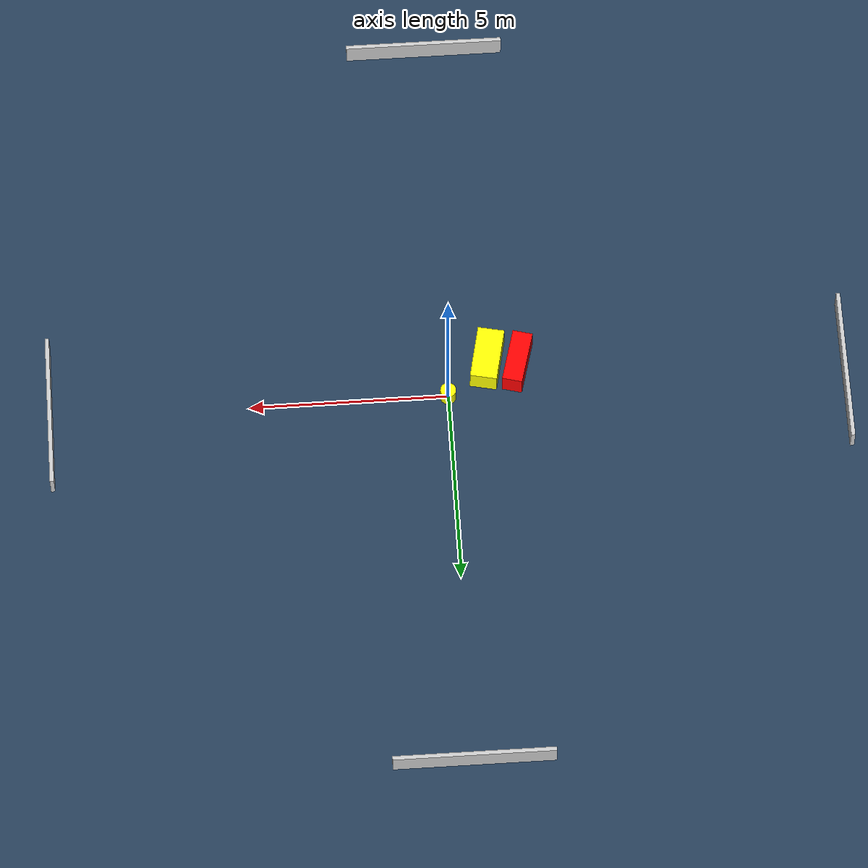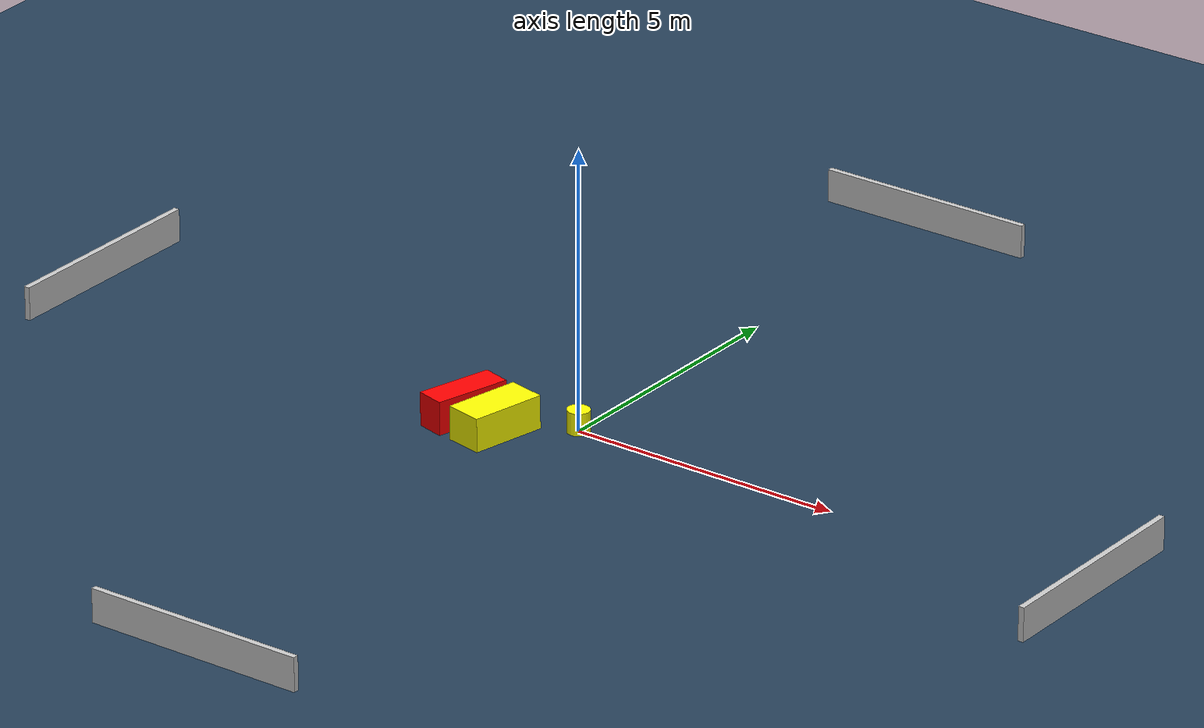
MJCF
<?xml version="1.0" ?>
<mujoco model="generated_environment">
  <option timestep="0.01" integrator="RK4" cone="elliptic"/>
  <default>
    <geom density="1"/>
  </default>
  <asset>
    <texture builtin="gradient" height="3072" name="skybox" rgb1="0.3 0.5 0.7" rgb2="0 0 0" type="skybox" width="512"/>
    <texture builtin="checker" height="300" name="groundplane" rgb1="0.2 0.3 0.4" rgb2="0.1 0.2 0.3" type="2d" width="300"/>
    <material name="groundplane" reflectance="0.2" texrepeat="5 5" texture="groundplane"/>
  </asset>
  <worldbody>
    <light dir="0 0 -1" directional="true" pos="0 0 1.5"/>
    <geom condim="3" friction="0.5 0.005 0.001" material="groundplane" name="floor" pos="0 0 0" size="0 0 0.05" type="plane"/>
    <body name="walls">
      <geom name="wall_1" condim="4" pos="-10.0 0.0 0.3" rgba="0.800000011920929 0.800000011920929 0.800000011920929 1.0" size="0.05 2.0 0.3" type="box"/>
      <geom name="wall_2" condim="4" pos="10.0 0.0 0.3" rgba="0.800000011920929 0.800000011920929 0.800000011920929 1.0" size="0.05 2.0 0.3" type="box"/>
      <geom name="wall_3" condim="4" pos="0.0 -10.0 0.3" rgba="0.800000011920929 0.800000011920929 0.800000011920929 1.0" size="2.0 0.05 0.3" type="box"/>
      <geom name="wall_4" condim="4" pos="0.0 10.0 0.3" rgba="0.800000011920929 0.800000011920929 0.800000011920929 1.0" size="2.0 0.05 0.3" type="box"/>
    </body>
    <body name="robot">
      <joint name="joint_x" type="slide" pos="0 0 0" axis="1 0 0"/>
      <joint name="joint_y" type="slide" pos="0 0 0" axis="0 1 0"/>
      <geom name="robot" type="cylinder" pos="0.0 0.0 0.2" size="0.2 0.2 0.0" mass="5.0" friction="1.0 0.005 0.0001" condim="4" rgba="1.0 1.0 0.0 1.0"/>
    </body>
    <body name="obstacle_1_movable">
      <geom name="obstacle_1_movable" condim="4" pos="-1.040070339577342 -0.88404421287845 0.3" euler="0 0 167.8919662051087" friction="0.0 0.005 0.001" rgba="1.0 1.0 0.0 1.0" size="0.3379488897741228 0.6883776112449007 0.3" type="box" mass="0.1"/>
      <joint type="free"/>
    </body>
    <body name="obstacle_2_static">
      <geom name="obstacle_2_static" condim="4" pos="-1.7901932026555054 -0.7472604865581868 0.3" euler="0 0 74.79359245581854" friction="0.0 0.005 0.001" rgba="1.0 0.0 0.0 1.0" size="0.6904411472818581 0.25436318144348474 0.3" type="box"/>
    </body>
  </worldbody>
  <actuator>
    <motor name="actuator_x" joint="joint_x" gear="1" ctrlrange="-1 1"/>
    <motor name="actuator_y" joint="joint_y" gear="1" ctrlrange="-1 1"/>
  </actuator>
</mujoco>
